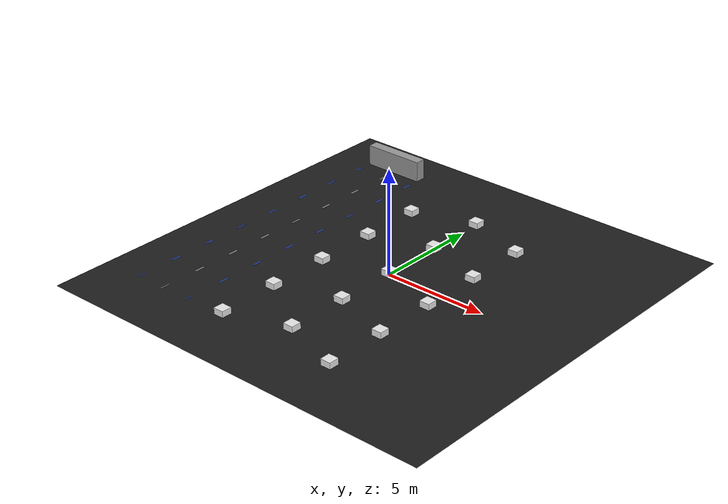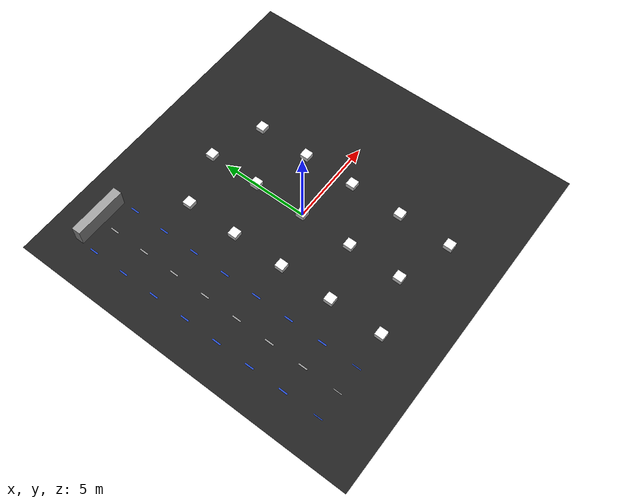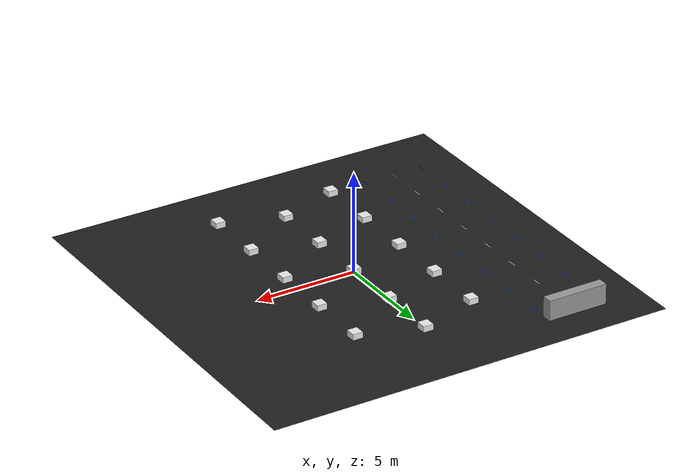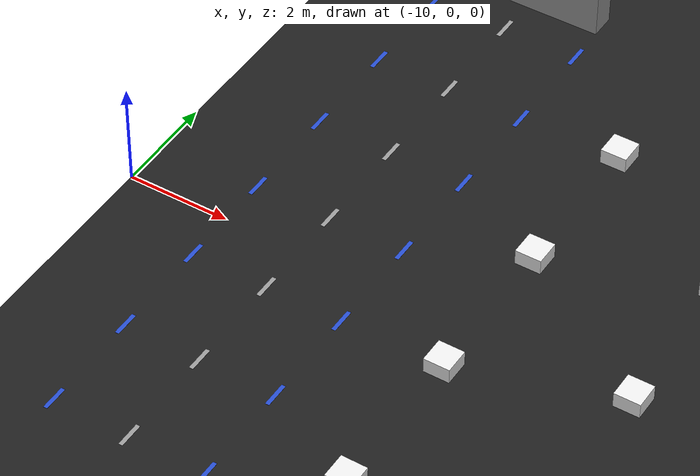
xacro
<?xml version="1.0"?>
<robot xmlns:xacro="http://www.ros.org/wiki/xacro" name="cam">
    <xacro:property name="pi" value="3.14159"/>
    <xacro:macro name="box_inertia" params="m w h d">
        <inertial>
            <mass value="${m}"/>
            <inertia ixx="${m / 12.0 * (d*d + h*h)}" ixy="0.0" ixz="0.0" iyy="${m / 12.0 * (w*w + h*h)}" iyz="0.0" izz="${m / 12.0 * (w*w + d*d)}"/>
        </inertial>
    </xacro:macro>
    <link name="world" />

    <xacro:macro name="box" params="n x y tx tz col">
    <link name="box_${n}">
        <visual>
            <origin xyz="0 0 0" rpy="0 0 0"/>
            <geometry>
                <box size="${tx} 0.5 ${tz}"/>
            </geometry>
        </visual>
        <collision>
            <origin xyz="0 0 0" rpy="0 0 0"/>
            <geometry>
                <box size="${tx} 0.5 ${tz}"/>
            </geometry>
        </collision>
        <xacro:box_inertia m="100" w="${tx}" h="0.5" d="${tz}"/>
    </link>

    <gazebo reference="box_${n}">
        <material>Gazebo/${col}</material>
    </gazebo>

    <joint name="box_${n}_to_world" type="fixed">
        <origin xyz="${x} ${y} ${tz/2+0.0005}" rpy="0 0 0"/>
        <child link="box_${n}"/>
        <parent link="world"/>
    </joint>
    </xacro:macro>

    <link name="plane">
        <visual>
            <origin xyz="0 0 0" rpy="0 0 0"/>
            <geometry>
                <box size="20 20 0.005"/>
            </geometry>
        </visual>
        <collision>
            <origin xyz="0 0 0" rpy="0 0 0"/>
            <geometry>
                <box size="20 20 0.0005"/>
            </geometry>
        </collision>
        <xacro:box_inertia m="1000" w="20" h="20" d="0.005"/>
    </link>

    <link name="camera">
        <visual>
            <origin xyz="0 0 0" rpy="0 0 0"/>
            <geometry>
                <box size="0.005 0.005 0.005"/>
            </geometry>
        </visual>
        <collision>
            <origin xyz="0 0 0" rpy="0 0 0"/>
            <geometry>
                <box size="0.005 0.005 0.005"/>
            </geometry>
        </collision>
        <xacro:box_inertia m="0.0001" w="0.005" h="0.005" d="0.005"/>
    </link>

    <joint name="cam_to_world" type="fixed">
        <origin xyz="0 0 12" rpy="0 ${pi/2} ${pi}"/>
        <child link="camera"/>
        <parent link="world"/>
    </joint>

    <gazebo reference="plane">
        <material>Gazebo/Black</material>
    </gazebo>

    <joint name="plane_to_world" type="fixed">
        <origin xyz="0 0 0.0005" rpy="0 0 0"/>
        <child link="plane"/>
        <parent link="world"/>
    </joint>

    <joint name="camera2_optical_joint" type="fixed">
        <parent link="camera"/>
        <child link="camera_link_optical2"/>
        <origin xyz="0 0 0" rpy="${-pi/2} 0 ${-pi/2}"/>
    </joint>

    <link name="camera_link_optical2"></link>

    <gazebo reference="camera">
        <sensor type="camera" name="camera3">
            <pose> 0 0 0 0 0 0 </pose>
            <visualize>false</visualize>
            <update_rate>30.0</update_rate>
            <camera name="camera3">
                <horizontal_fov>1.3962634</horizontal_fov>
                <image>
                    <width>800</width>
                    <height>800</height>
                    <format>R8G8B8</format>
                </image>
                <clip>
                    <near>0.02</near>
                    <far>300</far>
                </clip>
            </camera>
            <plugin name="camera_controller" filename="libgazebo_ros_camera.so">
                <alwaysOn>true</alwaysOn>
                <updateRate>0.0</updateRate>
                <cameraName>camera3</cameraName>
                <imageTopicName>ovh/image_raw</imageTopicName>
                <cameraInfoTopicName>ovh/camera_info</cameraInfoTopicName>
                <frameName>camera_link_optical2</frameName>
                <hackBaseline>0.07</hackBaseline>
                <distortionK1>0.0</distortionK1>
                <distortionK2>0.0</distortionK2>
                <distortionK3>0.0</distortionK3>
                <distortionT1>0.0</distortionT1>
                <distortionT2>0.0</distortionT2>
            </plugin>
        </sensor>
    </gazebo>

    <xacro:macro name="row" params="m s x n1" >
        <xacro:box n="1_${n1}" x="${x}" y="${m-7}" tx="0.5" tz="0.3" col="White"/>
        <xacro:box n="2_${n1}" x="${x}" y="${s*1-7+m}" tx="0.5" tz="0.3" col="White" />
        <xacro:box n="3_${n1}" x="${x}" y="${s*2-7+m}" tx="0.5" tz="0.3" col="White"/>
        <xacro:box n="4_${n1}" x="${x}" y="${s*3-7+m}" tx="0.5" tz="0.3" col="White"/>
        <xacro:box n="5_${n1}" x="${x}" y="${s*4-7+m}" tx="0.5" tz="0.3" col="White"/>
    </xacro:macro>

    <xacro:macro name="row_path" params="m s x n1 col" >
        <xacro:box n="10_${n1}" x="${x}" y="${m-7}" tx="0.05" tz="0.005" col="${col}"/>
        <xacro:box n="20_${n1}" x="${x}" y="${s*1-7+m}" tx="0.08" tz="0.005" col="${col}"/>
        <xacro:box n="30_${n1}" x="${x}" y="${s*2-7+m}" tx="0.08" tz="0.005" col="${col}" />
        <xacro:box n="40_${n1}" x="${x}" y="${s*3-7+m}" tx="0.08" tz="0.005" col="${col}"/>
        <xacro:box n="50_${n1}" x="${x}" y="${s*4-7+m}" tx="0.08" tz="0.005" col="${col}"/>
        <xacro:box n="60_${n1}" x="${x}" y="${s*5-7+m}" tx="0.08" tz="0.005" col="${col}"/>
        <xacro:box n="70_${n1}" x="${x}" y="${s*6-7+m}" tx="0.08" tz="0.005" col="${col}"/>
        <xacro:box n="80_${n1}" x="${x}" y="${s*7-7+m}" tx="0.08" tz="0.005" col="${col}"/>
    </xacro:macro>

    <xacro:row m="0" s="3" x="-3" n1="1"/>
    <xacro:row m="1" s="3" x="0" n1="2"/>
    <xacro:row m="0" s="3" x="3" n1="3"/>

    <xacro:row_path m="0" s="2" x="-8" n1="1" col="Blue"/>
    <xacro:row_path m="0" s="2" x="-5" n1="2" col="Blue"/>
    <xacro:row_path m="0" s="2" x="-6.5" n1="3" col="Grey"/>
    <xacro:box n="112" x="-6.5" y="8" tx="3" tz="1" col="Grey" />
</robot>
